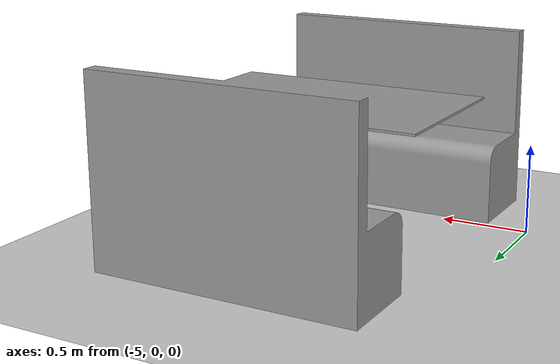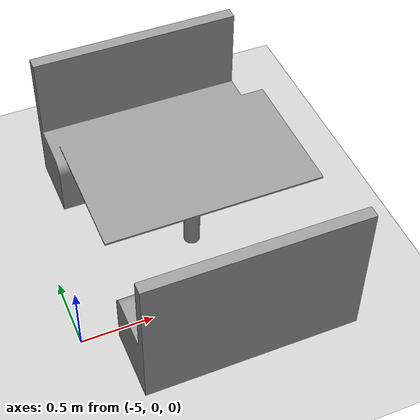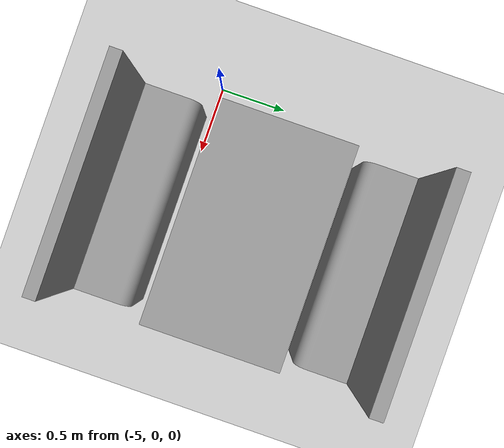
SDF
<sdf version="1.6">
 <world name="default">
  <model name="ground_plane">
   <static>1</static>
   <link name="link">
    <collision name="collision">
     <geometry><plane><normal>0 0 1</normal><size>100 100</size></plane></geometry>
     <surface><friction><ode><mu>100</mu><mu2>50</mu2></ode></friction></surface>
    </collision>
    <visual name="visual">
     <cast_shadows>0</cast_shadows>
     <geometry><plane><normal>0 0 1</normal><size>100 100</size></plane></geometry>
     <material>
      <script><uri>file://media/materials/scripts/gazebo.material</uri><name>Gazebo/Grey</name></script>
     </material>
    </visual>
   </link>
  </model>
  <model name="table_29">
   <link name="link_0">
    <inertial>
     <mass>1</mass>
     <inertia>
      <ixx>0.166667</ixx>
      <ixy>0</ixy>
      <ixz>0</ixz>
      <iyy>0.166667</iyy>
      <iyz>0</iyz>
      <izz>0.166667</izz>
     </inertia>
    </inertial>
    <visual name="visual">
     <pose>-1.9 -1.17 0 0 -0 0</pose>
     <geometry><mesh><uri>model://table/mesh/table.dae</uri><scale>0.6 0.6 0.6</scale></mesh></geometry>
     <material>
      <lighting>1</lighting>
      <script><uri>file://media/materials/scripts/gazebo.material</uri><name>Gazebo/Grey</name></script>
      <shader type="pixel"><normal_map>__default__</normal_map></shader>
      <ambient>0.3 0.3 0.3 1</ambient>
      <diffuse>0.7 0.7 0.7 1</diffuse>
      <specular>0.01 0.01 0.01 1</specular>
      <emissive>0 0 0 1</emissive>
     </material>
    </visual>
    <collision name="collision">
     <geometry><box><size>2.2 1.5 1.1</size></box></geometry>
     <surface>
      <friction>
       <ode><mu>1</mu><mu2>1</mu2><fdir1>0 0 0</fdir1><slip1>0</slip1><slip2>0</slip2></ode>
       <torsional>
        <coefficient>1</coefficient>
        <patch_radius>0</patch_radius>
        <surface_radius>0</surface_radius>
        <use_patch_radius>1</use_patch_radius>
        <ode><slip>0</slip></ode>
       </torsional>
      </friction>
      <bounce><restitution_coefficient>0</restitution_coefficient><threshold>1e+06</threshold></bounce>
      <contact>
       <collide_without_contact>0</collide_without_contact>
       <collide_without_contact_bitmask>1</collide_without_contact_bitmask>
       <collide_bitmask>1</collide_bitmask>
       <ode>
        <soft_cfm>0</soft_cfm>
        <soft_erp>0.2</soft_erp>
        <kp>1e+13</kp>
        <kd>1</kd>
        <max_vel>0.01</max_vel>
        <min_depth>0</min_depth>
       </ode>
       <bullet>
        <split_impulse>1</split_impulse>
        <split_impulse_penetration_threshold>-0.01</split_impulse_penetration_threshold>
        <soft_cfm>0</soft_cfm>
        <soft_erp>0.2</soft_erp>
        <kp>1e+13</kp>
        <kd>1</kd>
       </bullet>
      </contact>
     </surface>
    </collision>
   </link>
   <static>1</static>
   <pose>-4.00998 0.547173 0 0 -0 1.5708</pose>
  </model>
 </world>
</sdf>
